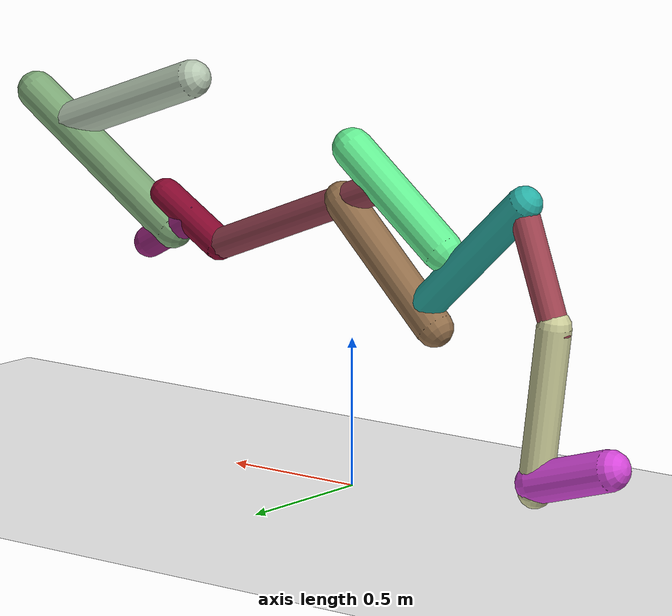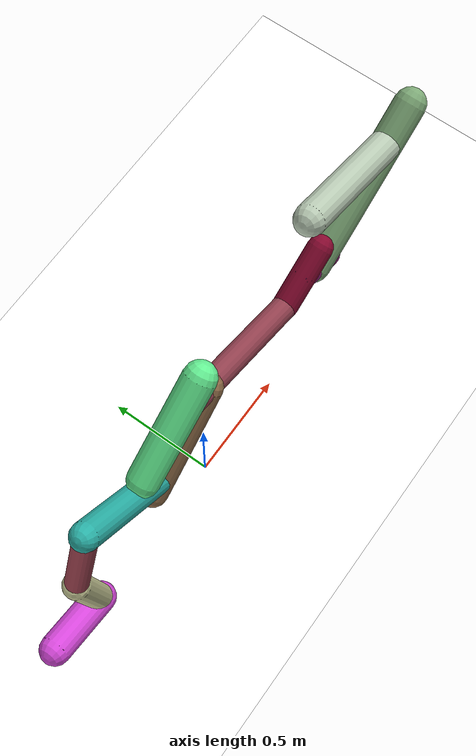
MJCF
<mujoco model="morphology">
  <option timestep="0.01"/>
  <default>
    <default class="/"/>
    <default class="0/"/>
    <default class="0/1/"/>
    <default class="0/1/2/"/>
    <default class="0/1/2/3/"/>
    <default class="0/1/2/3/4/"/>
    <default class="0/1/2/3/4/5/"/>
    <default class="0/1/6/"/>
    <default class="0/1/6/7/"/>
    <default class="0/1/6/7/8/"/>
    <default class="0/1/6/7/8/9/"/>
    <default class="0/1/6/7/8/9/10/"/>
  </default>
  <asset>
    <texture name="texplane" type="2d" builtin="checker" rgb1="0.10000000000000001 0.20000000000000001 0.29999999999999999" rgb2="0.20000000000000001 0.29999999999999999 0.40000000000000002" width="300" height="300"/>
    <material name="MatPlane" class="/" texture="texplane" texrepeat="20 20" specular="1" shininess="1" reflectance="0.5"/>
  </asset>
  <worldbody>
    <light name="//unnamed_light_0" class="/" directional="true" pos="0 0 1.5" dir="0 0 -1.3" cutoff="100" exponent="1" diffuse="1 1 1" specular="0.10000000000000001 0.10000000000000001 0.10000000000000001"/>
    <geom name="ground" class="/" type="plane" size="15 15 0.5" material="MatPlane" rgba="1 1 1 1"/>
    <site name="body" class="/" size="9.9999999999999995e-07 9.9999999999999995e-07 9.9999999999999995e-07" pos="0 0 1.131094789505005"/>
    <body pos="0 0 1.131094789505005" name="0/">
      <joint name="0/rootx/" class="/" type="slide" axis="1 0 0" limited="false" stiffness="0" armature="0" damping="0"/>
      <joint name="0/rootz/" class="/" type="slide" axis="0 0 1" limited="false" stiffness="0" armature="0" damping="0"/>
      <joint name="0/rooty/" class="/" type="hinge" axis="0 1 0" limited="false" stiffness="0" armature="0" damping="0"/>
      <geom name="0/geom" class="0/" type="capsule" contype="1" conaffinity="1" condim="3" size="0.068151066052536985" rgba="0.39136573120228269 0.93878637870793358 0.57535908073916442 1" friction="0.59999999999999998 0.10000000000000001 0.10000000000000001" fromto="0 0 0 -0.37125340907812954 0 -0.29781697183159411"/>
      <site name="0/end0" class="0/" size="0.0050000000000000001" pos="-0.37125340907812954 0 -0.29781697183159411"/>
      <site name="0/attach1" class="0/" size="9.9999999999999995e-07 9.9999999999999995e-07 9.9999999999999995e-07" pos="-0.13411224430918664 0 -0.10758393460919149"/>
      <body pos="-0.13411224430918664 0 -0.10758393460919149" name="0/1/">
        <geom name="0/1/geom" class="0/1/" type="capsule" contype="1" conaffinity="1" condim="3" size="0.052608053348221696" rgba="0.57108715937702814 0.24883505893896507 0.30830730069262213 1" friction="0.59999999999999998 0.10000000000000001 0.10000000000000001" fromto="0 0 0 0.70733513978626239 0 -0.28080681552347347"/>
        <site name="0/1/end1" class="0/1/" size="0.0050000000000000001" pos="0.70733513978626239 0 -0.28080681552347347"/>
        <site name="0/1/attach2" class="0/1/" size="9.9999999999999995e-07 9.9999999999999995e-07 9.9999999999999995e-07" pos="0.70409411491933793 0 -0.27952015263805757"/>
        <body pos="0.70409411491933793 0 -0.27952015263805757" name="0/1/2/">
          <joint name="0/1/2/joint/" class="0/1/" type="hinge" axis="0 1 0" limited="true" range="-62.28082055834227 62.28082055834227"/>
          <geom name="0/1/2/geom" class="0/1/2/" type="capsule" contype="1" conaffinity="1" condim="3" size="0.054714777278031534" rgba="0.52889422234298467 0.032843237341793063 0.18322050487620167 1" friction="0.59999999999999998 0.10000000000000001 0.10000000000000001" fromto="0 0 0 0.23589763909007611 0 0.14389278544116013"/>
          <site name="0/1/2/end2" class="0/1/2/" size="0.0050000000000000001" pos="0.23589763909007611 0 0.14389278544116013"/>
          <site name="0/1/2/attach3" class="0/1/2/" size="9.9999999999999995e-07 9.9999999999999995e-07 9.9999999999999995e-07" pos="0.122734347313171 0 0.074865467803394814"/>
          <body pos="0.122734347313171 0 0.074865467803394814" name="0/1/2/3/">
            <joint name="0/1/2/3/joint/" class="0/1/2/" type="hinge" axis="0 1 0" limited="true" range="-44.388219395312845 44.388219395312845"/>
            <geom name="0/1/2/3/geom" class="0/1/2/3/" type="capsule" contype="1" conaffinity="1" condim="3" size="0.0546737885659399" rgba="0.5970945841053189 0.1450557702013725 0.48820225065133493 1" friction="0.59999999999999998 0.10000000000000001 0.10000000000000001" fromto="0 0 0 0.18617497010007722 0 -0.10235235999549042"/>
            <site name="0/1/2/3/end3" class="0/1/2/3/" size="0.0050000000000000001" pos="0.18617497010007722 0 -0.10235235999549042"/>
            <site name="0/1/2/3/attach4" class="0/1/2/3/" size="9.9999999999999995e-07 9.9999999999999995e-07 9.9999999999999995e-07" pos="0.083259822113186749 0 -0.045773281346619905"/>
            <body pos="0.083259822113186749 0 -0.045773281346619905" name="0/1/2/3/4/">
              <geom name="0/1/2/3/4/geom" class="0/1/2/3/4/" type="capsule" contype="1" conaffinity="1" condim="3" size="0.067576333774343703" rgba="0.49306253005969236 0.66372277690465253 0.46784829783833803 1" friction="0.59999999999999998 0.10000000000000001 0.10000000000000001" fromto="0 0 0 0.61722829907859089 0 0.41239501530743006"/>
              <site name="0/1/2/3/4/end4" class="0/1/2/3/4/" size="0.0050000000000000001" pos="0.61722829907859089 0 0.41239501530743006"/>
              <site name="0/1/2/3/4/attach5" class="0/1/2/3/4/" size="9.9999999999999995e-07 9.9999999999999995e-07 9.9999999999999995e-07" pos="0.47351933547420361 0 0.31637728518404168"/>
              <body pos="0.47351933547420361 0 0.31637728518404168" name="0/1/2/3/4/5/">
                <joint name="0/1/2/3/4/5/joint/" class="0/1/2/3/4/" type="hinge" axis="0 1 0" limited="true" range="-59.408219038481803 59.408219038481803"/>
                <geom name="0/1/2/3/4/5/geom" class="0/1/2/3/4/5/" type="capsule" contype="1" conaffinity="1" condim="3" size="0.065548058464457742" rgba="0.72266898594215556 0.79128998300388254 0.70513904532048211 1" friction="0.59999999999999998 0.10000000000000001 0.10000000000000001" fromto="0 0 0 -0.5613167934786345 0 0.20346855063021962"/>
                <site name="0/1/2/3/4/5/end5" class="0/1/2/3/4/5/" size="0.0050000000000000001" pos="-0.5613167934786345 0 0.20346855063021962"/>
              </body>
            </body>
          </body>
        </body>
        <site name="0/1/attach6" class="0/1/" size="9.9999999999999995e-07 9.9999999999999995e-07 9.9999999999999995e-07" pos="0.17384648744696157 0 -0.069015768882448078"/>
        <body pos="0.17384648744696157 0 -0.069015768882448078" name="0/1/6/">
          <joint name="0/1/6/joint/" class="0/1/" type="hinge" axis="0 1 0" limited="true" range="-36.213951394098927 36.213951394098927"/>
          <geom name="0/1/6/geom" class="0/1/6/" type="capsule" contype="1" conaffinity="1" condim="3" size="0.064060709522422571" rgba="0.57531050906482739 0.43576233795967623 0.29471855198055574 1" friction="0.59999999999999998 0.10000000000000001 0.10000000000000001" fromto="0 0 0 -0.37775954416306973 0 -0.37641636861622096"/>
          <site name="0/1/6/end6" class="0/1/6/" size="0.0050000000000000001" pos="-0.37775954416306973 0 -0.37641636861622096"/>
          <site name="0/1/6/attach7" class="0/1/6/" size="9.9999999999999995e-07 9.9999999999999995e-07 9.9999999999999995e-07" pos="-0.32451154234727364 0 -0.32335769732843578"/>
          <body pos="-0.32451154234727364 0 -0.32335769732843578" name="0/1/6/7/">
            <geom name="0/1/6/7/geom" class="0/1/6/7/" type="capsule" contype="1" conaffinity="1" condim="3" size="0.059132640207783527" rgba="0.16398117072865492 0.69893422241575198 0.65921342233973479 1" friction="0.59999999999999998 0.10000000000000001 0.10000000000000001" fromto="0 0 0 -0.40959060443518652 0 0.39457016868165118"/>
            <site name="0/1/6/7/end7" class="0/1/6/7/" size="0.0050000000000000001" pos="-0.40959060443518652 0 0.39457016868165118"/>
            <site name="0/1/6/7/attach8" class="0/1/6/7/" size="9.9999999999999995e-07 9.9999999999999995e-07 9.9999999999999995e-07" pos="-0.40040117648650214 0 0.38571773384418651"/>
            <body pos="-0.40040117648650214 0 0.38571773384418651" name="0/1/6/7/8/">
              <joint name="0/1/6/7/8/joint/" class="0/1/6/7/" type="hinge" axis="0 1 0" limited="true" range="-32.354189556130152 32.354189556130152"/>
              <geom name="0/1/6/7/8/geom" class="0/1/6/7/8/" type="capsule" contype="1" conaffinity="1" condim="3" size="0.049135896626221517" rgba="0.64253977840837262 0.27011728590668149 0.32537615039767043 1" friction="0.59999999999999998 0.10000000000000001 0.10000000000000001" fromto="0 0 0 -0.13693631825207242 0 -0.39260324073193836"/>
              <site name="0/1/6/7/8/end8" class="0/1/6/7/8/" size="0.0050000000000000001" pos="-0.13693631825207242 0 -0.39260324073193836"/>
              <site name="0/1/6/7/8/attach9" class="0/1/6/7/8/" size="9.9999999999999995e-07 9.9999999999999995e-07 9.9999999999999995e-07" pos="-0.13009124836779673 0 -0.37297808464547"/>
              <body pos="-0.13009124836779673 0 -0.37297808464547" name="0/1/6/7/8/9/">
                <joint name="0/1/6/7/8/9/joint/" class="0/1/6/7/8/" type="hinge" axis="0 1 0" limited="true" range="-59.782639961797557 59.782639961797557"/>
                <geom name="0/1/6/7/8/9/geom" class="0/1/6/7/8/9/" type="capsule" contype="1" conaffinity="1" condim="3" size="0.057578463565234966" rgba="0.80652787778529877 0.81129373260302573 0.60875495243448441 1" friction="0.59999999999999998 0.10000000000000001 0.10000000000000001" fromto="0 0 0 0.0683250245844087 0 -0.54387700249761461"/>
                <site name="0/1/6/7/8/9/end9" class="0/1/6/7/8/9/" size="0.0050000000000000001" pos="0.0683250245844087 0 -0.54387700249761461"/>
                <site name="0/1/6/7/8/9/attach10" class="0/1/6/7/8/9/" size="9.9999999999999995e-07 9.9999999999999995e-07 9.9999999999999995e-07" pos="0.065009575208953244 0 -0.5174855495969628"/>
                <body pos="0.065009575208953244 0 -0.5174855495969628" name="0/1/6/7/8/9/10/">
                  <joint name="0/1/6/7/8/9/10/joint/" class="0/1/6/7/8/9/" type="hinge" axis="0 1 0" limited="true" range="-47.140632013374052 47.140632013374052"/>
                  <geom name="0/1/6/7/8/9/10/geom" class="0/1/6/7/8/9/10/" type="capsule" contype="1" conaffinity="1" condim="3" size="0.068681851123614579" rgba="0.84526283063729657 0.28144806360503871 0.86112836542746363 1" friction="0.59999999999999998 0.10000000000000001 0.10000000000000001" fromto="0 0 0 -0.28725830977885186 0 0.08540399552177691"/>
                  <site name="0/1/6/7/8/9/10/end10" class="0/1/6/7/8/9/10/" size="0.0050000000000000001" pos="-0.28725830977885186 0 0.08540399552177691"/>
                </body>
              </body>
            </body>
          </body>
        </body>
      </body>
      <camera name="0/side" class="0/" mode="trackcom" pos="0.40000000000000002 -4 0.20000000000000001" quat="0.70699999999999996 0.70699999999999996 0 0"/>
    </body>
  </worldbody>
  <actuator>
    <motor name="0/1/2/motor" class="0/1/2/" ctrllimited="true" ctrlrange="-1 1" gear="80" joint="0/1/2/joint/"/>
    <motor name="0/1/2/3/motor" class="0/1/2/3/" ctrllimited="true" ctrlrange="-1 1" gear="87" joint="0/1/2/3/joint/"/>
    <motor name="0/1/2/3/4/5/motor" class="0/1/2/3/4/5/" ctrllimited="true" ctrlrange="-1 1" gear="66" joint="0/1/2/3/4/5/joint/"/>
    <motor name="0/1/6/motor" class="0/1/6/" ctrllimited="true" ctrlrange="-1 1" gear="70" joint="0/1/6/joint/"/>
    <motor name="0/1/6/7/8/motor" class="0/1/6/7/8/" ctrllimited="true" ctrlrange="-1 1" gear="60" joint="0/1/6/7/8/joint/"/>
    <motor name="0/1/6/7/8/9/motor" class="0/1/6/7/8/9/" ctrllimited="true" ctrlrange="-1 1" gear="78" joint="0/1/6/7/8/9/joint/"/>
    <motor name="0/1/6/7/8/9/10/motor" class="0/1/6/7/8/9/10/" ctrllimited="true" ctrlrange="-1 1" gear="60" joint="0/1/6/7/8/9/10/joint/"/>
  </actuator>
  <sensor>
    <subtreelinvel name="velocity" body="0/"/>
  </sensor>
</mujoco>
